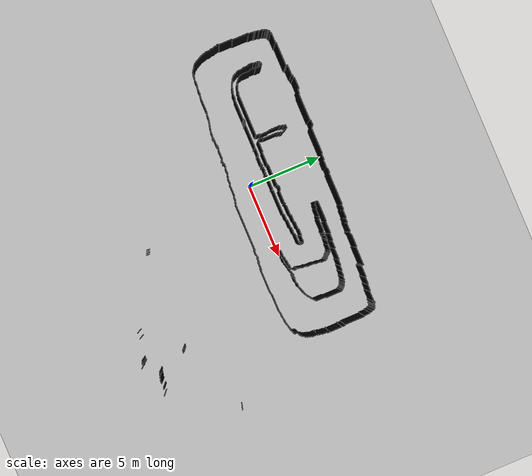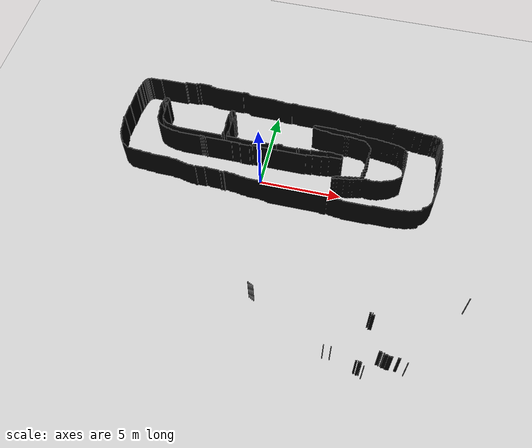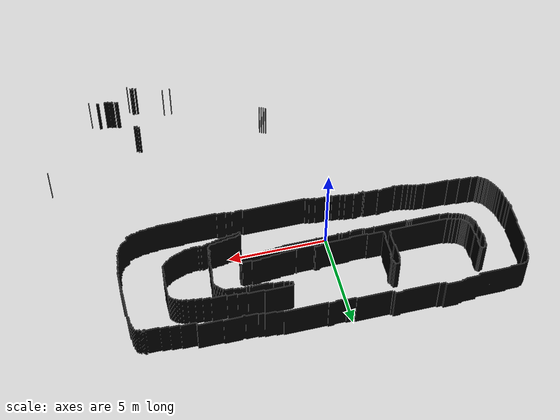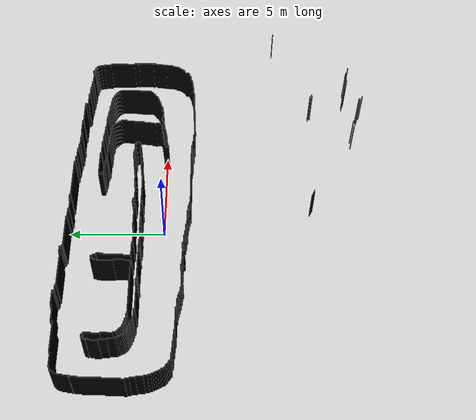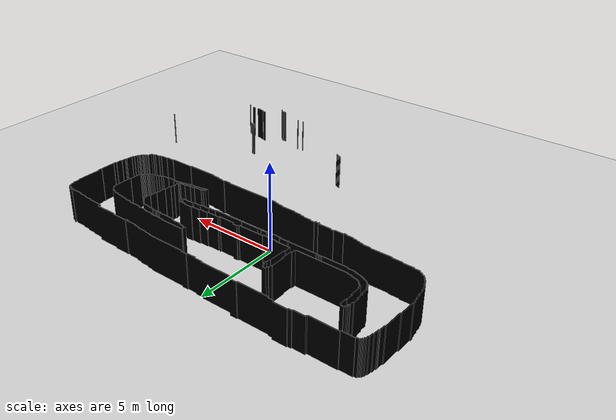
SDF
<?xml version="1.0"?>
<sdf version="1.4">
<world name="racecar_walker">

  <scene>
    <ambient>0.5 0.5 0.5 1.0</ambient>
    <shadows>0</shadows>
  </scene>

  <include>
    <uri>model://sun</uri>
    <pose>0.0 0.0 15.0 0 0 0</pose>
    <cast_shadows>false</cast_shadows>
    <attenuation>
      <constant>0.5</constant>
      <linear>0.01</linear>
      <quadratic>0.0</quadratic>
      <range>100</range>
    </attenuation>
  </include>

  <light type="point" name="Light 1">
              <pose>0 0 15 0 0 0</pose>
              <diffuse>.9 .9 .9 1</diffuse>
              <specular>.1 .1 .1 1</specular>
              <attenuation>
              <constant>0.5</constant>
              <linear>0.01</linear>
              <quadratic>0.0</quadratic>
              <range>50</range>
              </attenuation>
              <direction>0 0 -1</direction>
              <cast_shadows>false</cast_shadows>
          </light>

  <include>
    <uri>model://racecar_description/models/f110_racetrack</uri>
    <pose>0 0 0 0 0 0</pose>
    <name>walker_racecourse</name>
  </include>

  <model name='ground_plane'>
      <static>1</static>
      <link name='link'>
        <collision name='collision'>
          <geometry>
            <plane>
              <normal>0 0 1</normal>
              <size>100 100</size>
            </plane>
          </geometry>
          <surface>
            <friction>
              <ode>
                <mu>1000</mu>
                <mu2>500</mu2>
              </ode>
              <torsional>
                <ode/>
              </torsional>
            </friction>
            <contact>
              <ode/>
            </contact>
            <bounce/>
          </surface>
          <max_contacts>10</max_contacts>
        </collision>
        <visual name='visual'>
          <cast_shadows>0</cast_shadows>
          <geometry>
            <plane>
              <normal>0 0 1</normal>
              <size>100 100</size>
            </plane>
          </geometry>
          <material>
            <script>
              <uri>file://media/materials/scripts/gazebo.material</uri>
              <name>Gazebo/Grey</name>
            </script>
          </material>
        </visual>
        <self_collide>0</self_collide>
        <kinematic>0</kinematic>
        <gravity>1</gravity>
      </link>
  </model>

</world>
</sdf>

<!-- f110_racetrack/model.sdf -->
<sdf version="1.4">
  <model name="f110_racetrack">
    <link name="link">
      <inertial>
        <mass>15</mass>
        <inertia>
          <ixx>0.0</ixx>
          <ixy>0.0</ixy>
          <ixz>0.0</ixz>
          <iyy>0.0</iyy>
          <iyz>0.0</iyz>
          <izz>0.0</izz>
        </inertia>
      </inertial>
      <collision name="collision">
        <pose>0 0 0 0 0 0</pose>
        <geometry>
          <mesh>
            <uri>model://racecar_description/models/f110_racetrack/meshes/final_map.dae</uri>
          </mesh>
        </geometry>
      </collision>
      <visual name="visual">
        <pose>0 0 0 0 0 0</pose>
        <geometry>
          <mesh>
            <uri>model://racecar_description/models/f110_racetrack/meshes/final_map.dae</uri>
          </mesh>
        </geometry>
      </visual>
    </link>
    <static>1</static>
  </model>
</sdf>
